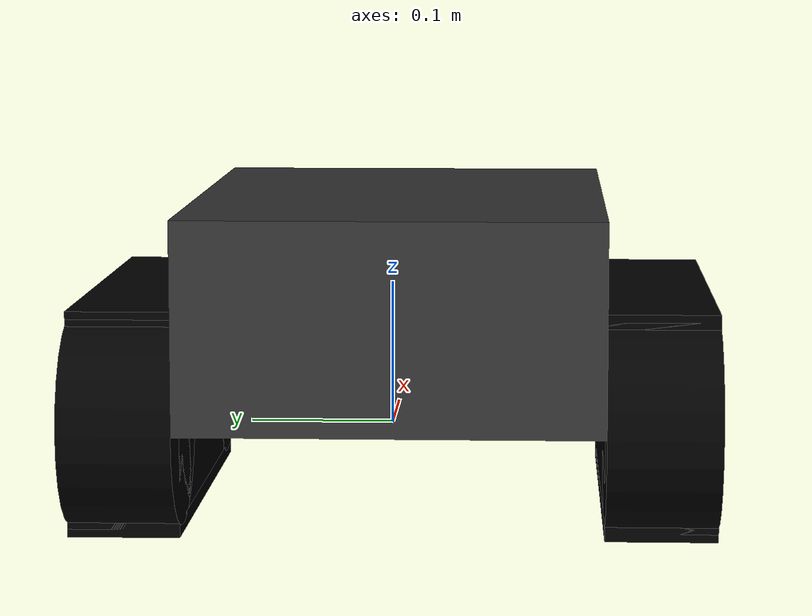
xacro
<?xml version="1.0"?>
<robot xmlns:xacro="http://www.ros.org/wiki/xacro">

    <xacro:include filename="inertial_macros.xacro"/>

    <!-- ==================== DIMENSIONS ==================== -->
    <!-- Adjust these properties to match the real robot       -->

    <!-- Chassis (main body box) -->
    <xacro:property name="chassis_length" value="0.45"/>
    <xacro:property name="chassis_width" value="0.30"/>
    <xacro:property name="chassis_height" value="0.15"/>
    <xacro:property name="chassis_mass" value="12.0"/>

    <!-- Track / wheel properties -->
    <xacro:property name="wheel_radius" value="0.075"/>
    <xacro:property name="track_width" value="0.08"/>
    <xacro:property name="track_length" value="0.35"/>
    <xacro:property name="wheel_mass" value="1.5"/>

    <!-- Wheel placement -->
    <xacro:property name="wheel_offset_x" value="${chassis_length/2 - wheel_radius}"/>
    <xacro:property name="wheel_offset_y" value="${chassis_width/2 + track_width/2}"/>
    <xacro:property name="wheel_offset_z" value="0.0"/>

    <!-- Ground clearance offset (chassis bottom above ground) -->
    <xacro:property name="ground_clearance" value="0.0"/>

    <!-- ==================== MATERIALS ==================== -->

    <material name="white">
        <color rgba="1 1 1 1"/>
    </material>

    <material name="dark_grey">
        <color rgba="0.2 0.2 0.2 1"/>
    </material>

    <material name="blue">
        <color rgba="0.2 0.2 1 1"/>
    </material>

    <material name="black">
        <color rgba="0 0 0 1"/>
    </material>

    <material name="red">
        <color rgba="1 0 0 1"/>
    </material>

    <!-- ==================== BASE LINK ==================== -->

    <link name="base_link">
    </link>

    <!-- ==================== BASE FOOTPRINT ==================== -->

    <joint name="base_footprint_joint" type="fixed">
        <parent link="base_link"/>
        <child link="base_footprint"/>
        <origin xyz="0 0 0" rpy="0 0 0"/>
    </joint>

    <link name="base_footprint">
    </link>

    <!-- ==================== CHASSIS ==================== -->
    <!-- Chassis is offset so base_link sits at the center of the wheel axis -->

    <joint name="chassis_joint" type="fixed">
        <parent link="base_link"/>
        <child link="chassis"/>
        <origin xyz="${-chassis_length/2 + wheel_offset_x} 0 ${ground_clearance}"/>
    </joint>

    <link name="chassis">
        <!-- Main body box -->
        <visual>
            <origin xyz="${chassis_length/2} 0 ${chassis_height/2}" rpy="0 0 0"/>
            <geometry>
                <box size="${chassis_length} ${chassis_width} ${chassis_height}"/>
            </geometry>
            <material name="dark_grey"/>
        </visual>
        <collision>
            <origin xyz="${chassis_length/2} 0 ${chassis_height/2}" rpy="0 0 0"/>
            <geometry>
                <box size="${chassis_length} ${chassis_width} ${chassis_height}"/>
            </geometry>
        </collision>
        <xacro:inertial_box mass="${chassis_mass}" x="${chassis_length}" y="${chassis_width}" z="${chassis_height}">
            <origin xyz="${chassis_length/2} 0 ${chassis_height/2}" rpy="0 0 0"/>
        </xacro:inertial_box>
    </link>

    <gazebo reference="chassis">
        <material>Gazebo/DarkGrey</material>
    </gazebo>

    <!-- ==================== TRACK VISUAL MACRO ==================== -->
    <!-- Each track is visualized as: front sprocket + rear sprocket + connecting box -->

    <xacro:macro name="track_visual" params="prefix y_offset">
        <joint name="${prefix}_track_joint" type="fixed">
            <parent link="chassis"/>
            <child link="${prefix}_track"/>
            <origin xyz="0 ${y_offset} ${-ground_clearance - wheel_radius}" rpy="0 0 0"/>
        </joint>

        <link name="${prefix}_track">
            <!-- Front sprocket -->
            <visual>
                <origin xyz="${chassis_length - wheel_radius} 0 ${wheel_radius}" rpy="${pi/2} 0 0"/>
                <geometry>
                    <cylinder radius="${wheel_radius}" length="${track_width}"/>
                </geometry>
                <material name="black"/>
            </visual>
            <!-- Rear sprocket -->
            <visual>
                <origin xyz="${wheel_radius} 0 ${wheel_radius}" rpy="${pi/2} 0 0"/>
                <geometry>
                    <cylinder radius="${wheel_radius}" length="${track_width}"/>
                </geometry>
                <material name="black"/>
            </visual>
            <!-- Top track run -->
            <visual>
                <origin xyz="${chassis_length/2} 0 ${wheel_radius*2}" rpy="0 0 0"/>
                <geometry>
                    <box size="${track_length} ${track_width} ${wheel_radius*0.15}"/>
                </geometry>
                <material name="black"/>
            </visual>
            <!-- Bottom track run -->
            <visual>
                <origin xyz="${chassis_length/2} 0 0" rpy="0 0 0"/>
                <geometry>
                    <box size="${track_length} ${track_width} ${wheel_radius*0.15}"/>
                </geometry>
                <material name="black"/>
            </visual>
            <!-- Side plate (track body fill) -->
            <visual>
                <origin xyz="${chassis_length/2} 0 ${wheel_radius}" rpy="0 0 0"/>
                <geometry>
                    <box size="${track_length} ${track_width} ${wheel_radius*2}"/>
                </geometry>
                <material name="black"/>
            </visual>
        </link>

        <gazebo reference="${prefix}_track">
            <material>Gazebo/Black</material>
        </gazebo>
    </xacro:macro>

    <!-- Instantiate left and right track visuals -->
    <xacro:track_visual prefix="left" y_offset="${wheel_offset_y}"/>
    <xacro:track_visual prefix="right" y_offset="${-wheel_offset_y}"/>

    <!-- ==================== DRIVE WHEEL MACRO ==================== -->

    <xacro:macro name="drive_wheel" params="prefix y_sign">
        <joint name="${prefix}_wheel_joint" type="continuous">
            <parent link="base_link"/>
            <child link="${prefix}_wheel"/>
            <origin xyz="0 ${y_sign * wheel_offset_y} 0" rpy="${-y_sign * pi/2} 0 0"/>
            <axis xyz="0 0 ${y_sign}"/>
        </joint>

        <link name="${prefix}_wheel">
            <collision>
                <geometry>
                    <sphere radius="${wheel_radius}"/>
                </geometry>
            </collision>
            <xacro:inertial_cylinder mass="${wheel_mass}" length="${track_width}" radius="${wheel_radius}">
                <origin xyz="0 0 0" rpy="0 0 0"/>
            </xacro:inertial_cylinder>
        </link>

        <gazebo reference="${prefix}_wheel">
            <mu1 value="1.5"/>
            <mu2 value="1.5"/>
            <kp>1000000.0</kp>
            <kd>100.0</kd>
        </gazebo>
    </xacro:macro>

    <xacro:drive_wheel prefix="left" y_sign="1"/>
    <xacro:drive_wheel prefix="right" y_sign="-1"/>

    <!-- ==================== FRONT IDLER WHEELS (support at front of tracks) ==================== -->
    <!-- Same radius as drive wheels so they touch ground. Low friction for skid-steering. -->

    <xacro:property name="idler_mass" value="0.1"/>
    <xacro:property name="front_idler_x" value="${chassis_length - wheel_radius - (chassis_length/2 - wheel_offset_x)}"/>

    <xacro:macro name="idler_wheel" params="prefix side x_pos y_pos">
        <joint name="${prefix}_${side}_idler_joint" type="continuous">
            <parent link="base_link"/>
            <child link="${prefix}_${side}_idler"/>
            <origin xyz="${x_pos} ${y_pos} 0" rpy="${-pi/2} 0 0"/>
            <axis xyz="0 0 1"/>
        </joint>

        <link name="${prefix}_${side}_idler">
            <collision>
                <geometry>
                    <sphere radius="${wheel_radius}"/>
                </geometry>
            </collision>
            <xacro:inertial_sphere mass="${idler_mass}" radius="${wheel_radius}">
                <origin xyz="0 0 0" rpy="0 0 0"/>
            </xacro:inertial_sphere>
        </link>

        <gazebo reference="${prefix}_${side}_idler">
            <mu1 value="0.01"/>
            <mu2 value="0.01"/>
            <kp>1000000.0</kp>
            <kd>100.0</kd>
        </gazebo>
    </xacro:macro>

    <xacro:idler_wheel prefix="front" side="left"  x_pos="${front_idler_x}" y_pos="${wheel_offset_y}"/>
    <xacro:idler_wheel prefix="front" side="right" x_pos="${front_idler_x}" y_pos="${-wheel_offset_y}"/>

</robot>
